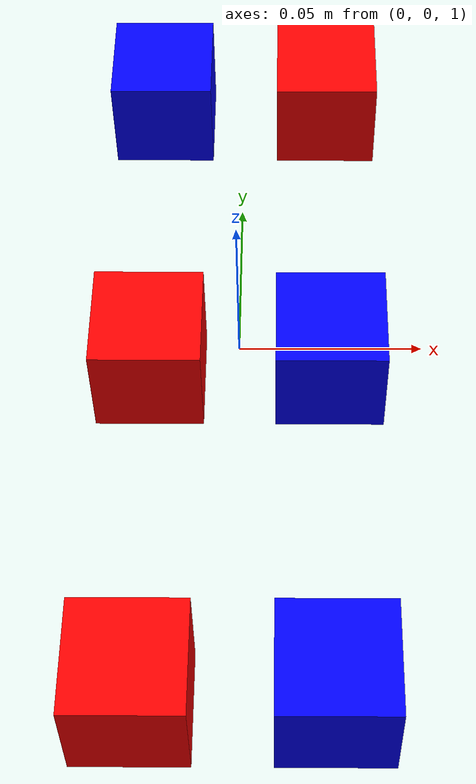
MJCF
<?xml version='1.0' encoding='utf-8'?>
<mujoco>
  <asset>
  </asset>
  <worldbody>
    <body name="object_red_0" pos="-0.025 0.0 1.0">
        <joint name="object_red_0_joint" type="free" damping="0.0005" />
        <geom type="box" size="0.015 0.015 0.015" rgba="1 0 0 1" density="1000" group="1"
              friction="2.0 0.5 0.1" condim="6" solref="0.01 1" solimp="0.998 0.998 0.001"/>
    </body>

    <body name="object_red_1" pos="0.025 0.1 1.0">
        <joint name="object_red_1_joint" type="free" damping="0.0005" />
        <geom type="box" size="0.015 0.015 0.015" rgba="1 0 0 1" density="1000" group="1"
              friction="2.0 0.5 0.1" condim="6" solref="0.01 1" solimp="0.998 0.998 0.001"/>
    </body>

    <body name="object_red_2" pos="-0.025 -0.1 1.0">
        <joint name="object_red_2_joint" type="free" damping="0.0005" />
        <geom type="box" size="0.015 0.015 0.015" rgba="1 0 0 1" density="1000" group="1"
              friction="2.0 0.5 0.1" condim="6" solref="0.01 1" solimp="0.998 0.998 0.001"/>
    </body>

    <body name="object_blue_0" pos="0.025 0.0 1.0">
        <joint name="object_blue_0_joint" type="free" damping="0.0005" />
        <geom type="box" size="0.015 0.015 0.015" rgba="0 0 1 1" density="1000" group="1"
              friction="2.0 0.5 0.1" condim="6" solref="0.01 1" solimp="0.998 0.998 0.001"/>
    </body>

    <body name="object_blue_1" pos="-0.025 0.1 1.0">
        <joint name="object_blue_1_joint" type="free" damping="0.0005" />
        <geom type="box" size="0.015 0.015 0.015" rgba="0 0 1 1" density="1000" group="1"
              friction="2.0 0.5 0.1" condim="6" solref="0.01 1" solimp="0.998 0.998 0.001"/>
    </body>

    <body name="object_blue_2" pos="0.025 -0.1 1.0">
        <joint name="object_blue_2_joint" type="free" damping="0.0005" />
        <geom type="box" size="0.015 0.015 0.015" rgba="0 0 1 1" density="1000" group="1"
              friction="2.0 0.5 0.1" condim="6" solref="0.01 1" solimp="0.998 0.998 0.001"/>
    </body>

  </worldbody>
</mujoco>
